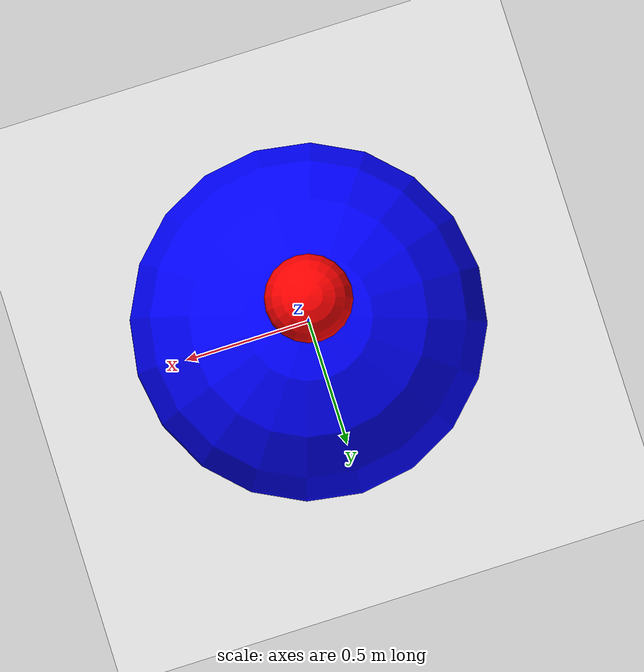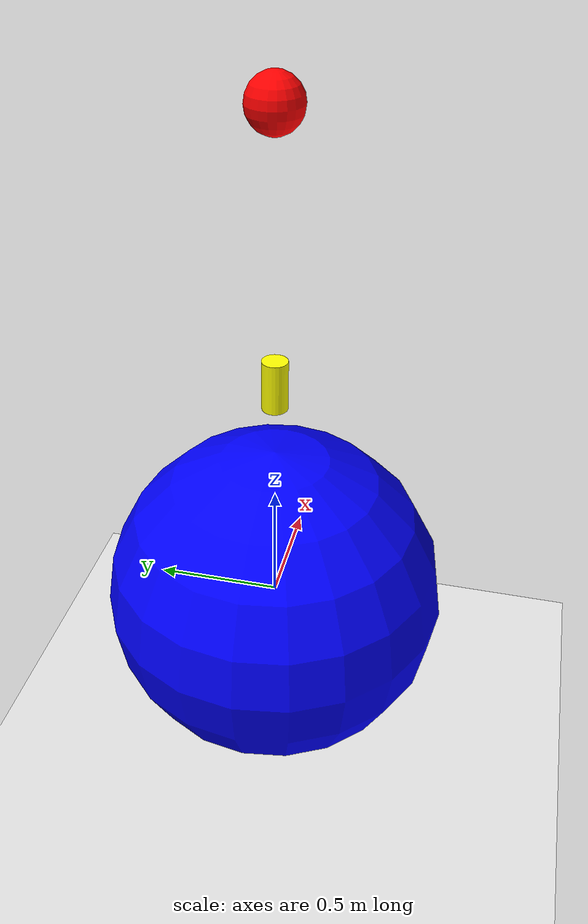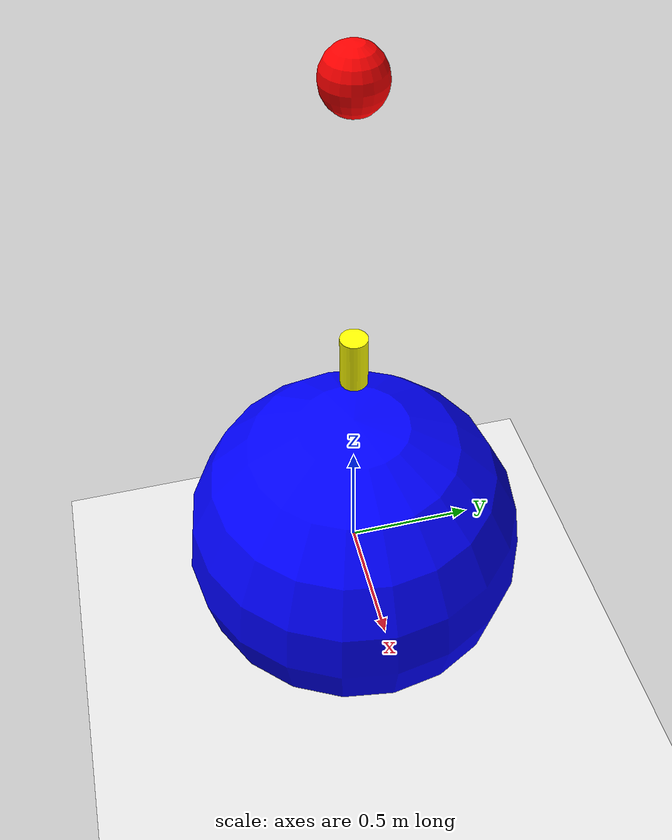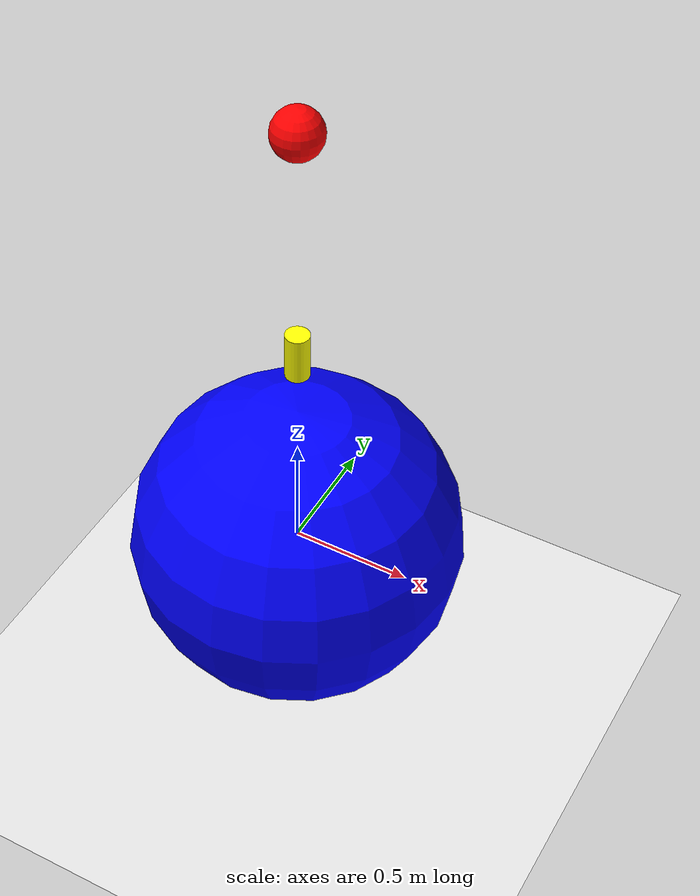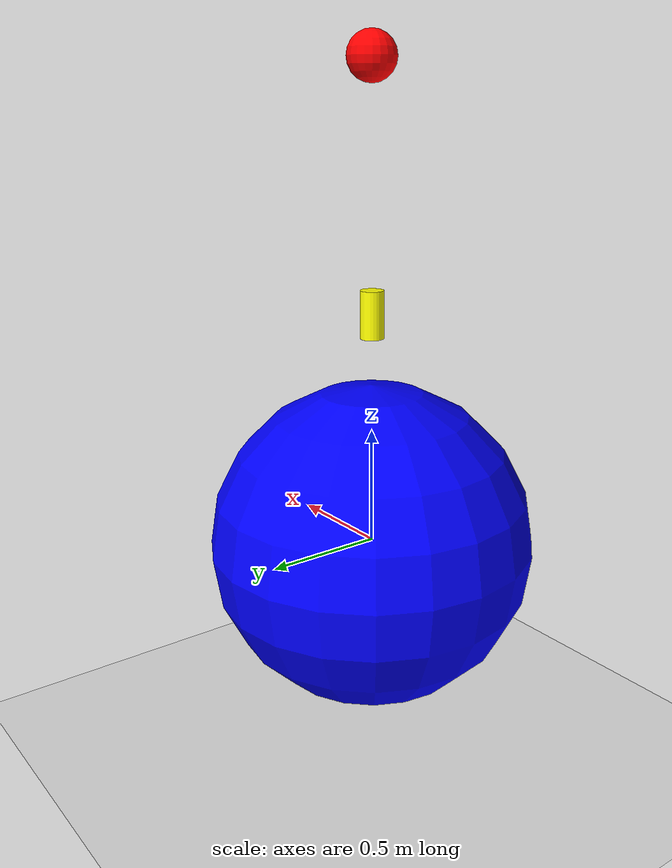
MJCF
<mujoco model="simple pendulum">
  <include file="scenealt.xml"/>
  <compiler angle="radian"/>
  <worldbody>
    <body name="pivot" pos="0 0 2">
      <geom type="sphere" size="0.1" rgba="1 0 0 1"/>
      <body name="string" pos="0 0 -1">
        <joint type="hinge" axis="0 1 0"/>
        <geom type="cylinder" size="0.05 0.1" rgba="1 1 0 1"/>
        <body name="bob" pos="0 0 -1">
          <geom type="sphere" size="0.7" rgba="0 0 1 1"/>
        </body>
      </body>
    </body>
  </worldbody>
</mujoco>

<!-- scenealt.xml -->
<mujoco>
  <worldbody>
    <light diffuse=".5 .5 .5" pos="0 0 3" dir="0 0 -1"/>
    <light diffuse=".3 .3 .3" pos="-2 -2 2"/>
    <geom name="floor" type="plane" size="100 100 0.1" pos="0 0 -1" rgba=".9 .9 .9 1"/>
  </worldbody>
</mujoco>
